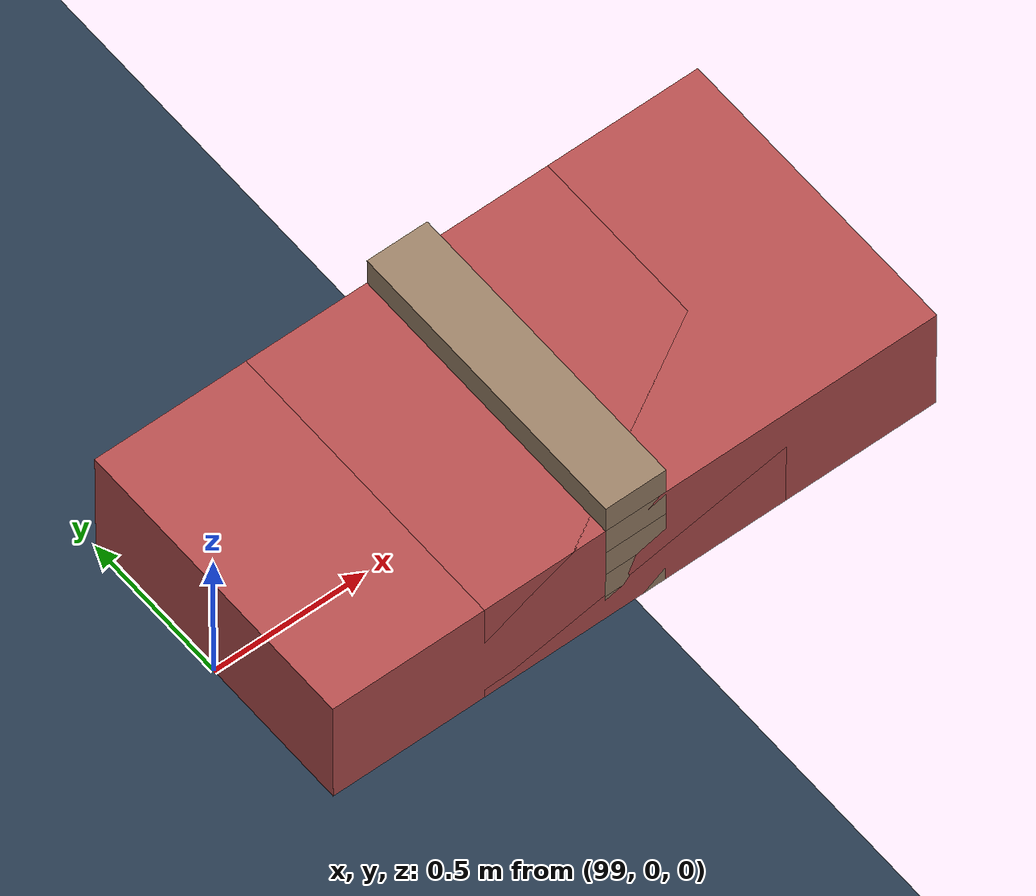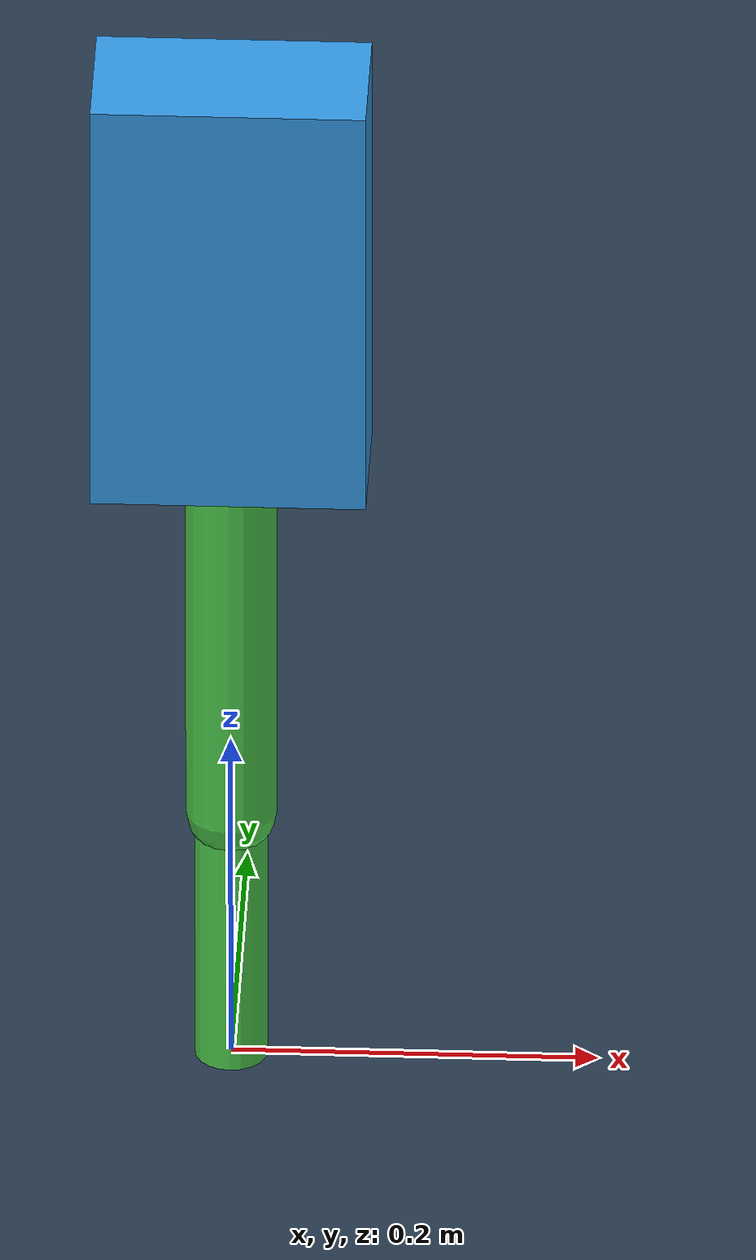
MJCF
<mujoco model="biped2d_ame556">
  <compiler angle="radian"/>

  <option gravity="0 0 -9.81" integrator="RK4" timestep="0.0005">
    <flag override="enable"/>
  </option>

  <default>
    <joint damping="0.1"/>
    <geom contype="1" conaffinity="1" condim="3"
          solref="0.00001 1" solimp="0.95 0.99 0.0001"
          friction="0.5 0.5 0.1"/>
  </default>

  <visual>
    <global offwidth="1280" offheight="720"/>
  </visual>

  <asset>
    <texture type="skybox" builtin="gradient" rgb1="0.4 0.6 0.8" rgb2="0.1 0.1 0.2" width="512" height="3072"/>
    <texture type="2d" name="ground_tex" builtin="checker" rgb1="0.2 0.3 0.4" rgb2="0.1 0.15 0.2" width="300" height="300"/>
    <material name="ground_mat" texture="ground_tex" texuniform="true" texrepeat="5 5"/>
    <material name="stair_mat" rgba="0.6 0.5 0.4 1"/>
    <material name="obs_mat" rgba="0.7 0.3 0.3 1"/>
  </asset>

  <worldbody>
    <light pos="0 0 3" dir="0 0 -1" directional="true"/>
    <camera name="side" pos="0 -2.5 0.8" xyaxes="1 0 0 0 0 1" mode="trackcom"/>

    <!-- Ground with PDF-specified contact parameters: Kp=1e5, Kd=1e3, friction=0.5 -->
    <geom name="floor" type="plane" size="100 5 0.1" material="ground_mat"/>

    <!-- Stairs for Task 4 (positioned far away, moved by Python) -->
    <geom name="stair1" type="box" size="0.1 0.5 0.05" pos="100 0 0.05" material="stair_mat"/>
    <geom name="stair2" type="box" size="0.1 0.5 0.05" pos="100 0 0.15" material="stair_mat"/>
    <geom name="stair3" type="box" size="0.1 0.5 0.05" pos="100 0 0.25" material="stair_mat"/>
    <geom name="stair4" type="box" size="0.1 0.5 0.05" pos="100 0 0.35" material="stair_mat"/>
    <geom name="stair5" type="box" size="0.1 0.5 0.05" pos="100 0 0.45" material="stair_mat"/>

    <!-- Obstacles for Task 5 (positioned far away, moved by Python) -->
    <geom name="obs1" type="box" size="0.5 0.5 0.2" pos="100 0 0.2" material="obs_mat"/>
    <geom name="obs2" type="box" size="0.5 0.5 0.2" pos="100 0 0.2" material="obs_mat"/>
    <geom name="obs3" type="box" size="1.0 0.5 0.2" pos="100 0 0.2" material="obs_mat"/>

    <body name="trunk" pos="0 0 0.5">
      <!-- Planar joint: x-slide, z-slide, y-rotation -->
      <joint name="slide_x" type="slide" axis="1 0 0"/>
      <joint name="slide_z" type="slide" axis="0 0 1"/>
      <joint name="rot_y" type="hinge" axis="0 1 0"/>

      <!-- Trunk: 8kg box, no collision with ground -->
      <geom name="trunk_geom" type="box" size="0.075 0.04 0.125" mass="8.0"
            rgba="0.2 0.6 0.9 1" contype="0" conaffinity="0"/>

      <!-- LEFT LEG -->
      <body name="left_thigh" pos="0 0 -0.125">
        <!-- Hip joint q1: CCW positive, limits -120° to +30° -->
        <joint name="q1" type="hinge" axis="0 1 0" range="-2.094 0.524" damping="0.1"/>
        <!-- Thigh: 0.25kg, 0.22m capsule, no collision -->
        <geom type="capsule" fromto="0 0 0 0 0 -0.22" size="0.025" mass="0.25"
              rgba="0.3 0.8 0.3 1" contype="0" conaffinity="0"/>
        <inertial pos="0 0 -0.11" mass="0.25" diaginertia="0.001008 0.001008 0.0001"/>

        <body name="left_shank" pos="0 0 -0.22">
          <!-- Knee joint q2: CCW positive, limits 0° to +160° -->
          <joint name="q2" type="hinge" axis="0 1 0" range="0 2.793" damping="0.1"/>
          <!-- Shank: 0.25kg, 0.22m capsule, no collision -->
          <geom type="capsule" fromto="0 0 0 0 0 -0.22" size="0.02" mass="0.25"
                rgba="0.3 0.8 0.3 1" contype="0" conaffinity="0"/>
          <inertial pos="0 0 -0.11" mass="0.25" diaginertia="0.001008 0.001008 0.0001"/>
          <!-- Foot: small sphere for ground contact -->
          <geom name="left_foot" type="sphere" pos="0 0 -0.22" size="0.02"
                rgba="0.9 0.6 0.2 1" mass="0.01"/>
        </body>
      </body>

      <!-- RIGHT LEG -->
      <body name="right_thigh" pos="0 0 -0.125">
        <!-- Hip joint q3: CCW positive, limits -120° to +30° -->
        <joint name="q3" type="hinge" axis="0 1 0" range="-2.094 0.524" damping="0.1"/>
        <!-- Thigh: 0.25kg, 0.22m capsule, no collision -->
        <geom type="capsule" fromto="0 0 0 0 0 -0.22" size="0.025" mass="0.25"
              rgba="0.8 0.3 0.3 1" contype="0" conaffinity="0"/>
        <inertial pos="0 0 -0.11" mass="0.25" diaginertia="0.001008 0.001008 0.0001"/>

        <body name="right_shank" pos="0 0 -0.22">
          <!-- Knee joint q4: CCW positive, limits 0° to +160° -->
          <joint name="q4" type="hinge" axis="0 1 0" range="0 2.793" damping="0.1"/>
          <!-- Shank: 0.25kg, 0.22m capsule, no collision -->
          <geom type="capsule" fromto="0 0 0 0 0 -0.22" size="0.02" mass="0.25"
                rgba="0.8 0.3 0.3 1" contype="0" conaffinity="0"/>
          <inertial pos="0 0 -0.11" mass="0.25" diaginertia="0.001008 0.001008 0.0001"/>
          <!-- Foot: small sphere for ground contact -->
          <geom name="right_foot" type="sphere" pos="0 0 -0.22" size="0.02"
                rgba="0.9 0.6 0.2 1" mass="0.01"/>
        </body>
      </body>
    </body>
  </worldbody>

  <!-- Actuators with torque limits from PDF -->
  <actuator>
    <motor name="hip_l" joint="q1" gear="1" ctrllimited="true" ctrlrange="-30 30"/>
    <motor name="knee_l" joint="q2" gear="1" ctrllimited="true" ctrlrange="-60 60"/>
    <motor name="hip_r" joint="q3" gear="1" ctrllimited="true" ctrlrange="-30 30"/>
    <motor name="knee_r" joint="q4" gear="1" ctrllimited="true" ctrlrange="-60 60"/>
  </actuator>
</mujoco>
